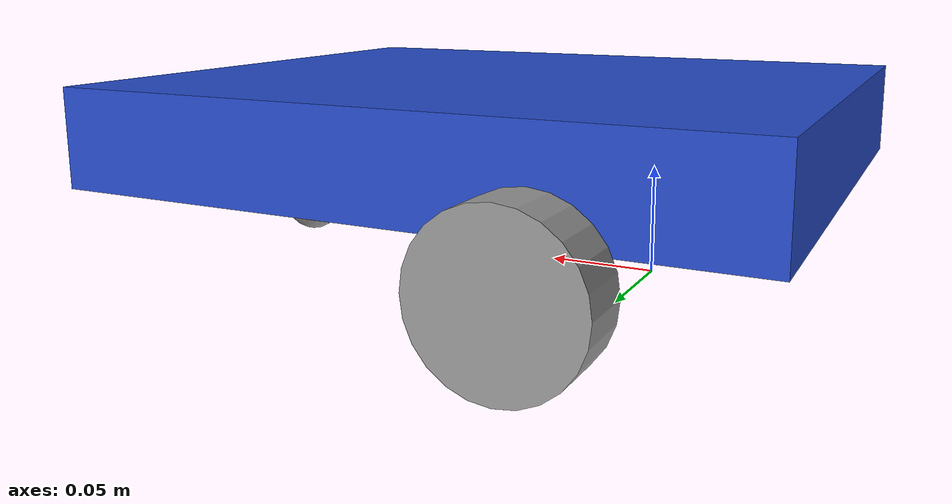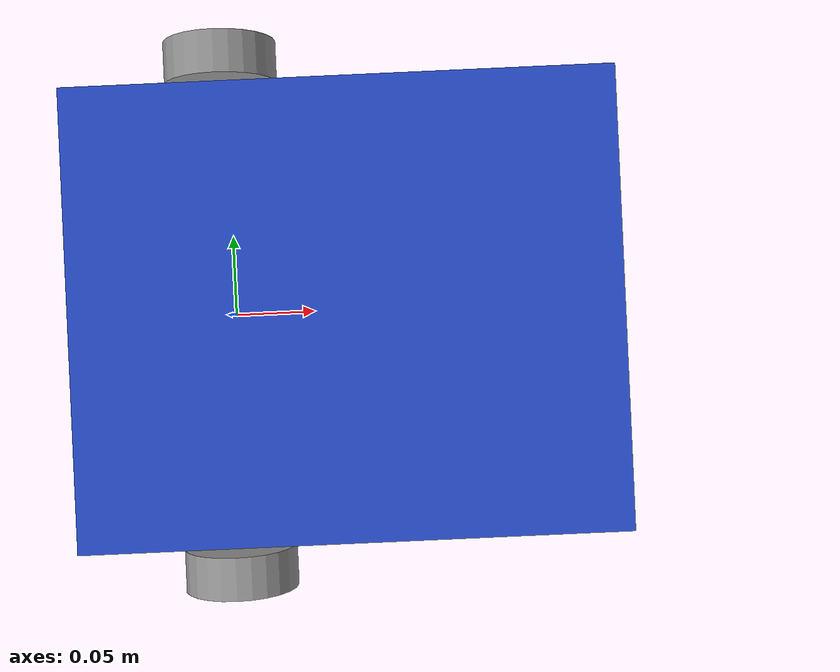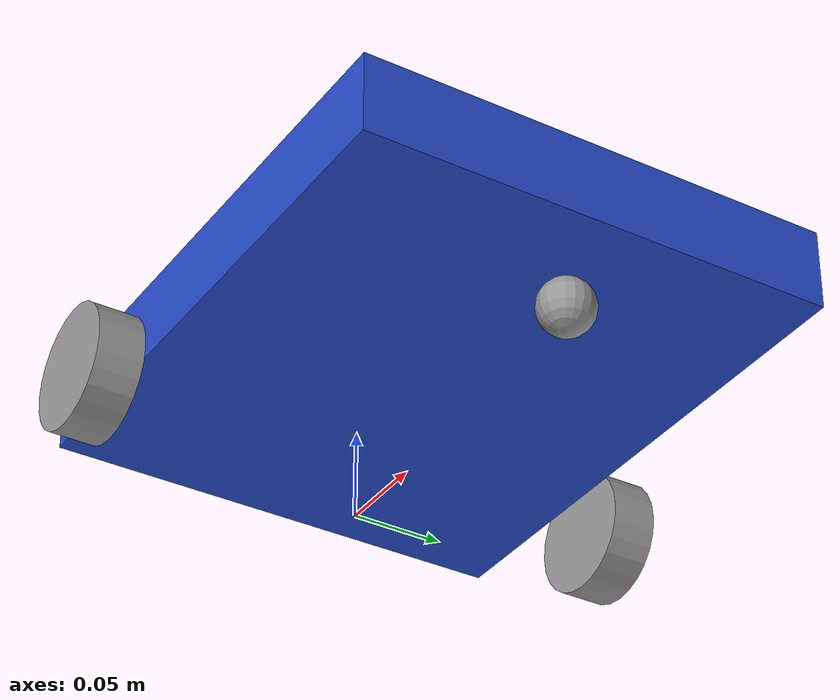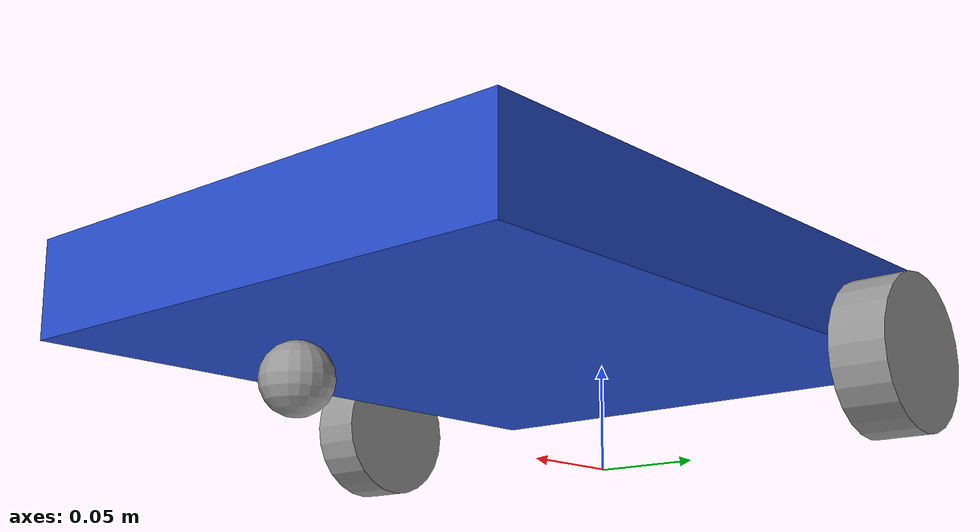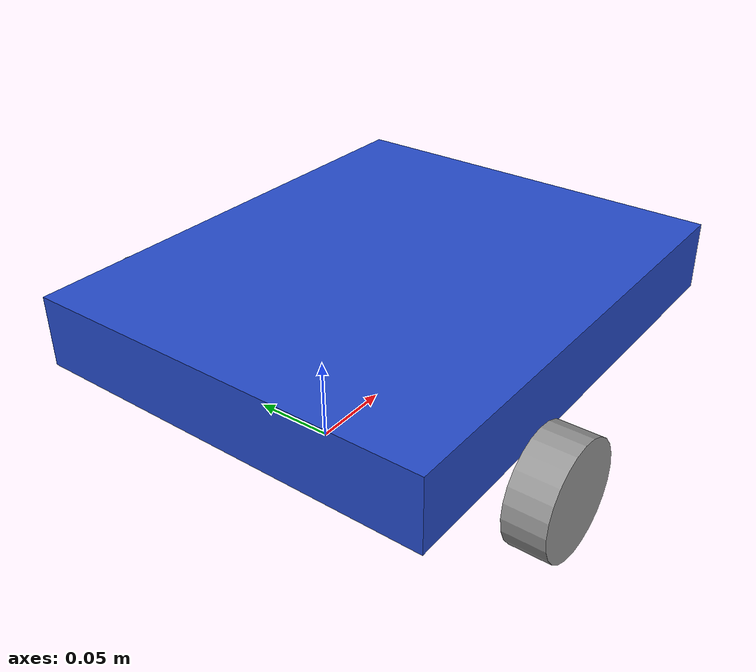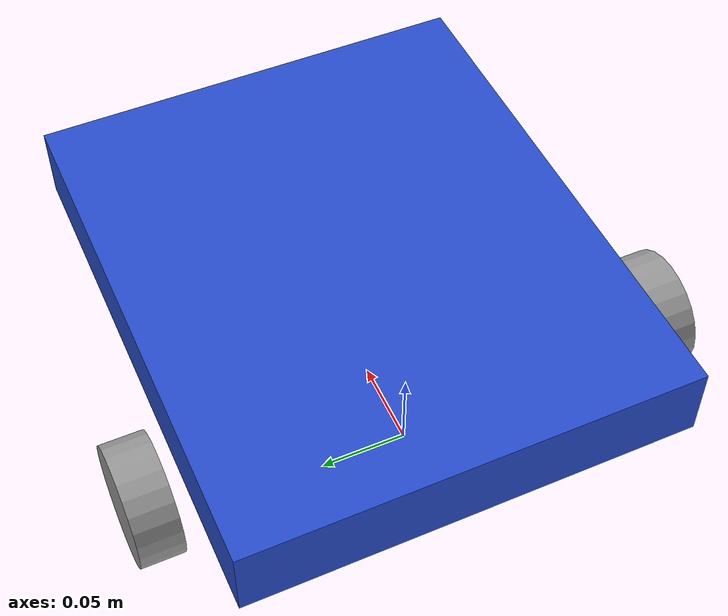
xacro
<?xml version="1.0"?>
<robot xmlns:xacro="http://www.ros.org/wiki/xacro">

    <!-- Physical DiffBot dimensions, in metres and kilograms. -->
    <xacro:property name="base_length" value="0.310" />
    <xacro:property name="base_width" value="0.260" />
    <xacro:property name="base_height" value="0.045" />
    <xacro:property name="ground_to_chassis_top" value="0.089" />
    <xacro:property name="wheel_radius" value="0.034" />
    <xacro:property name="wheel_length" value="0.025" />
    <xacro:property name="wheel_separation" value="0.305" />
    <xacro:property name="base_link_height" value="${wheel_radius}" />
    <xacro:property name="axle_to_chassis_front" value="0.225" />
    <xacro:property name="chassis_center_x"
                    value="${axle_to_chassis_front - base_length / 2.0}" />
    <xacro:property name="chassis_center_z"
                    value="${ground_to_chassis_top - base_height / 2.0 - base_link_height}" />
    <xacro:property name="caster_offset_x" value="0.193" />
    <xacro:property name="caster_radius" value="0.015" />
    <xacro:property name="base_mass" value="0.759" />
    <xacro:property name="wheel_mass" value="0.025" />
    <xacro:property name="caster_mass" value="0.013" />

    <link name="base_footprint" />

    <link name="base_link">
        <visual>
            <geometry>
                <box size="${base_length} ${base_width} ${base_height}" />
            </geometry>
            <origin xyz="${chassis_center_x} 0 ${chassis_center_z}" rpy="0 0 0" />
            <material name="blue" />
        </visual>
        <collision>
            <geometry>
                <box size="${base_length} ${base_width} ${base_height}" />
            </geometry>
            <origin xyz="${chassis_center_x} 0 ${chassis_center_z}" rpy="0 0 0" />
        </collision>
        <xacro:box_inertia m="${base_mass}" l="${base_length}" w="${base_width}"
                           h="${base_height}"
                           xyz="${chassis_center_x} 0 ${chassis_center_z}" rpy="0 0 0" />
    </link>

    <xacro:macro name="wheel_link" params="prefix">
        <link name="${prefix}_wheel_link">
            <visual>
                <geometry>
                    <cylinder radius="${wheel_radius}" length="${wheel_length}" />
                </geometry>
                <origin xyz="0 0 0" rpy="${pi / 2.0} 0 0" />
                <material name="grey" />
            </visual>
            <collision>
                <geometry>
                    <cylinder radius="${wheel_radius}" length="${wheel_length}" />
                </geometry>
                <origin xyz="0 0 0" rpy="${pi / 2.0} 0 0" />
            </collision>
            <xacro:cylinder_inertia m="${wheel_mass}" r="${wheel_radius}" h="${wheel_length}"
                                    xyz="0 0 0" rpy="${pi / 2.0} 0 0" />
        </link>
    </xacro:macro>

    <xacro:wheel_link prefix="right" />
    <xacro:wheel_link prefix="left" />

    <link name="caster_wheel_link">
        <visual>
            <geometry>
                <sphere radius="${caster_radius}" />
            </geometry>
            <origin xyz="0 0 0" rpy="0 0 0" />
            <material name="grey" />
        </visual>
        <collision>
            <geometry>
                <sphere radius="${caster_radius}" />
            </geometry>
            <origin xyz="0 0 0" rpy="0 0 0" />
        </collision>
        <xacro:sphere_inertia m="${caster_mass}" r="${caster_radius}"
                              xyz="0 0 0" rpy="0 0 0" />
    </link>

    <joint name="base_joint" type="fixed">
        <parent link="base_footprint" />
        <child link="base_link" />
        <origin xyz="0 0 ${base_link_height}" rpy="0 0 0"/>
    </joint>

    <joint name="base_right_wheel_joint" type="continuous">
        <parent link="base_link" />
        <child link="right_wheel_link" />
        <origin xyz="0 ${-wheel_separation / 2.0} 0" rpy="0 0 0" />
        <axis xyz="0 1 0" />
    </joint>

    <joint name="base_left_wheel_joint" type="continuous">
        <parent link="base_link" />
        <child link="left_wheel_link" />
        <origin xyz="0 ${wheel_separation / 2.0} 0" rpy="0 0 0" />
        <axis xyz="0 1 0" />
    </joint>

    <joint name="base_caster_wheel_joint" type="fixed">
        <parent link="base_link" />
        <child link="caster_wheel_link" />
        <origin xyz="${caster_offset_x} 0 ${caster_radius - base_link_height}" rpy="0 0 0" />
    </joint>

</robot>
